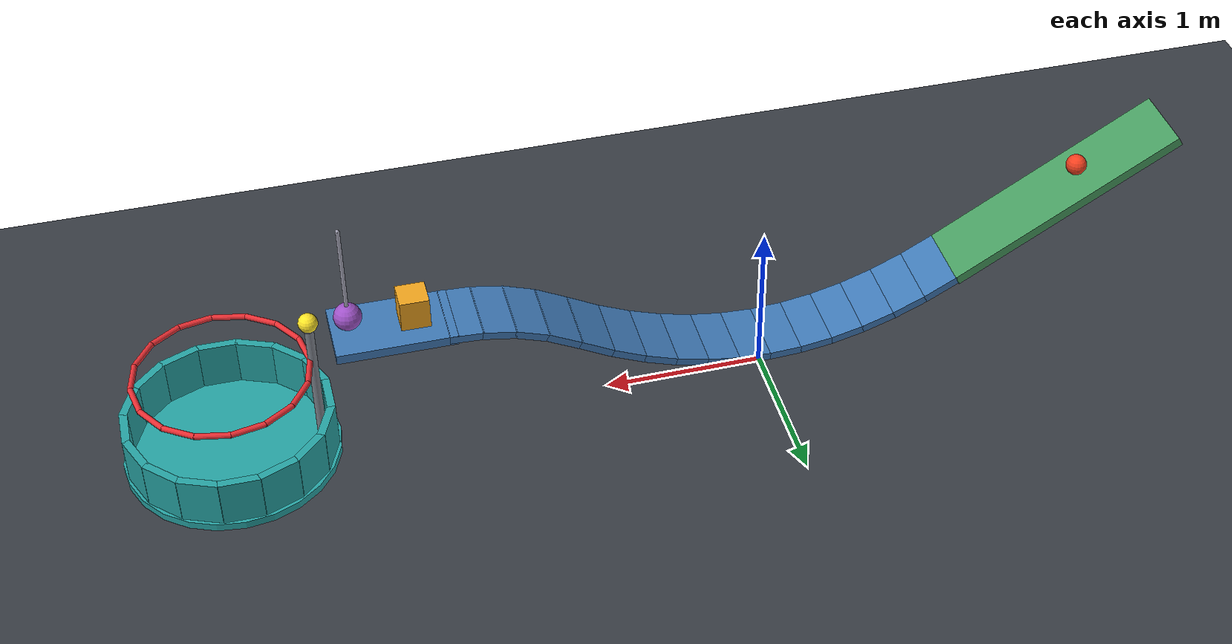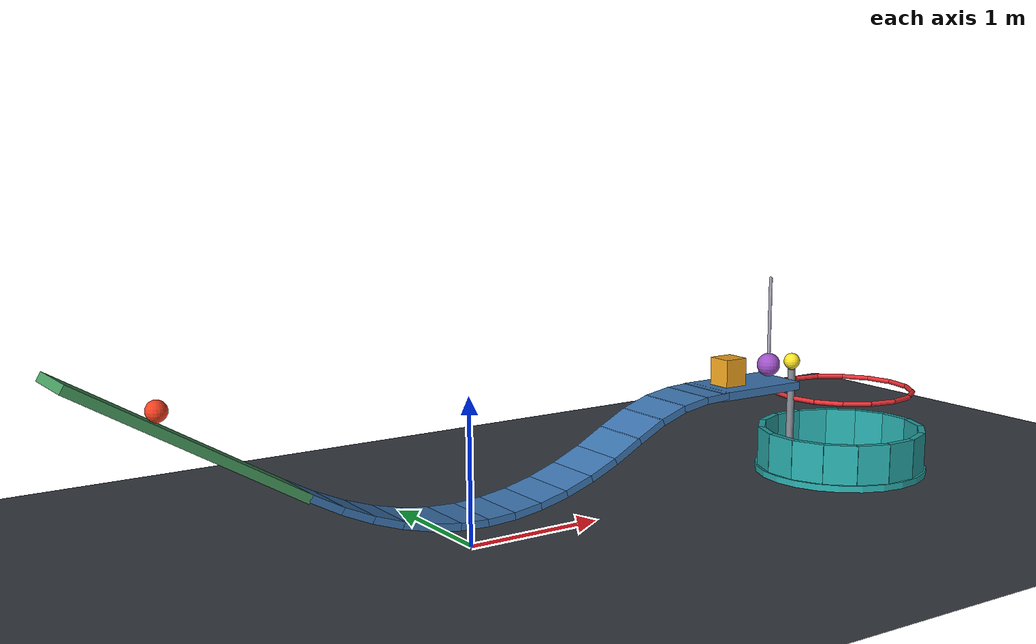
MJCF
<mujoco model="gravity_halfpipe_chain">
  <compiler angle="radian" autolimits="true"/>
  <option timestep="0.002" gravity="0 0 -9.81" integrator="implicitfast" solver="Newton" iterations="100" cone="elliptic"/>
  <size njmax="2000" nconmax="400"/>
  <visual>
    <global azimuth="135" elevation="-20"/>
    <headlight ambient="0.35 0.35 0.35" diffuse="0.7 0.7 0.7" specular="0.2 0.2 0.2"/>
  </visual>

  <worldbody>
    <light name="overhead" pos="0 0 6" dir="0 0 -1" directional="true"/>
    <camera name="overview" pos="0.7 -8 4.3" xyaxes="1 0 0 0 0.36 0.933"/>
    <geom name="floor" type="plane" pos="0 0 0" size="10 5 0.1" friction="0.8 0.02 0.002" rgba="0.22 0.24 0.27 1"/>

    <body name="ball1" pos="-2.024051 0 1.170233">
      <freejoint name="ball1_free"/>
      <geom name="ball1_sphere" type="sphere" size="0.065" mass="0.15" friction="0.5 0.003 0.00002" solref="0.008 1" rgba="0.95 0.25 0.12 1"/>
    </body>

    <!-- The ball's initial contact point is one metre along the ramp from its lower end. -->
    <body name="ramp">
      <geom name="ramp_surface" type="box" pos="-1.901421 0 0.985872" euler="0 0.540420 0" size="0.803 0.22 0.03" friction="0.5 0.003 0.00002" solref="0.008 1" rgba="0.28 0.62 0.38 1"/>
    </body>

    <!-- Closely joined primitive segments form the bowl and its gently flattened far lip. -->
    <body name="halfpipe">
      <geom name="halfpipe_01" type="box" pos="-1.112048 0 0.523095" euler="0 0.502843 0" size="0.117127 0.22 0.025" friction="0.5 0.003 0.00002" solref="0.008 1" rgba="0.25 0.48 0.72 1"/>
      <geom name="halfpipe_02" type="box" pos="-0.910259 0 0.422202" euler="0 0.422854 0" size="0.112659 0.22 0.025" friction="0.5 0.003 0.00002" solref="0.008 1" rgba="0.25 0.48 0.72 1"/>
      <geom name="halfpipe_03" type="box" pos="-0.708259 0 0.341404" euler="0 0.336675 0" size="0.108948 0.22 0.025" friction="0.5 0.003 0.00002" solref="0.008 1" rgba="0.25 0.48 0.72 1"/>
      <geom name="halfpipe_04" type="box" pos="-0.506063 0 0.280746" euler="0 0.244979 0" size="0.106078 0.22 0.025" friction="0.5 0.003 0.00002" solref="0.008 1" rgba="0.25 0.48 0.72 1"/>
      <geom name="halfpipe_05" type="box" pos="-0.303709 0 0.240277" euler="0 0.148890 0" size="0.104119 0.22 0.025" friction="0.5 0.003 0.00002" solref="0.008 1" rgba="0.25 0.48 0.72 1"/>
      <geom name="halfpipe_06" type="box" pos="-0.101248 0 0.220031" euler="0 0.049958 0" size="0.103125 0.22 0.025" friction="0.5 0.003 0.00002" solref="0.008 1" rgba="0.25 0.48 0.72 1"/>
      <geom name="halfpipe_07" type="box" pos="0.101248 0 0.220031" euler="0 -0.049958 0" size="0.103125 0.22 0.025" friction="0.5 0.003 0.00002" solref="0.008 1" rgba="0.25 0.48 0.72 1"/>
      <geom name="halfpipe_08" type="box" pos="0.303709 0 0.240277" euler="0 -0.148890 0" size="0.104119 0.22 0.025" friction="0.5 0.003 0.00002" solref="0.008 1" rgba="0.25 0.48 0.72 1"/>
      <geom name="halfpipe_09" type="box" pos="0.506063 0 0.280746" euler="0 -0.244979 0" size="0.106078 0.22 0.025" friction="0.5 0.003 0.00002" solref="0.008 1" rgba="0.25 0.48 0.72 1"/>
      <geom name="halfpipe_10" type="box" pos="0.708259 0 0.341404" euler="0 -0.336675 0" size="0.108948 0.22 0.025" friction="0.5 0.003 0.00002" solref="0.008 1" rgba="0.25 0.48 0.72 1"/>
      <geom name="halfpipe_11" type="box" pos="0.910259 0 0.422202" euler="0 -0.422854 0" size="0.112659 0.22 0.025" friction="0.5 0.003 0.00002" solref="0.008 1" rgba="0.25 0.48 0.72 1"/>
      <geom name="halfpipe_12" type="box" pos="1.112048 0 0.523095" euler="0 -0.502843 0" size="0.117127 0.22 0.025" friction="0.5 0.003 0.00002" solref="0.008 1" rgba="0.25 0.48 0.72 1"/>
      <geom name="halfpipe_13" type="box" pos="1.311621 0 0.630365" euler="0 -0.483447 0" size="0.115944 0.22 0.025" friction="0.5 0.003 0.00002" solref="0.008 1" rgba="0.25 0.48 0.72 1"/>
      <geom name="halfpipe_14" type="box" pos="1.508259 0 0.716404" euler="0 -0.336675 0" size="0.108948 0.22 0.025" friction="0.5 0.003 0.00002" solref="0.008 1" rgba="0.25 0.48 0.72 1"/>
      <geom name="halfpipe_15" type="box" pos="1.704310 0 0.767874" euler="0 -0.173246 0" size="0.104520 0.22 0.025" friction="0.5 0.003 0.00002" solref="0.008 1" rgba="0.25 0.48 0.72 1"/>
      <geom name="halfpipe_16" type="box" pos="1.901248 0 0.790031" euler="0 -0.049958 0" size="0.103125 0.22 0.025" friction="0.5 0.003 0.00002" solref="0.008 1" rgba="0.25 0.48 0.72 1"/>
      <geom name="halfpipe_exit" type="box" pos="2.315 0 0.79" size="0.365 0.22 0.03" friction="0.08 0.002 0.00002" solref="0.008 1" rgba="0.25 0.48 0.72 1"/>
    </body>

    <body name="block" pos="2.18 0 0.92">
      <freejoint name="block_free"/>
      <inertial pos="0 0 -0.035" mass="0.07" diaginertia="0.0004 0.0004 0.00038"/>
      <geom name="block_box" type="box" size="0.09 0.09 0.10" friction="0.10 0.002 0.00002" solref="0.008 1" rgba="0.95 0.65 0.12 1"/>
    </body>

    <body name="pendulum" pos="2.57 0 1.565">
      <joint name="pendulum_hinge" type="hinge" axis="0 1 0" range="-1.3 0.5" damping="0.001"/>
      <geom name="pendulum_rod" type="capsule" fromto="0 0 0 0 0 -0.64" size="0.012" mass="0.004" friction="0.2 0.002 0.00002" rgba="0.65 0.65 0.72 1"/>
      <geom name="pendulum_head" type="sphere" pos="0 0 -0.64" size="0.085" mass="0.035" friction="0.2 0.002 0.00002" solref="0.008 1" rgba="0.62 0.32 0.78 1"/>
    </body>

    <body name="ball2" pos="2.805 0 0.925">
      <freejoint name="ball2_free"/>
      <geom name="ball2_sphere" type="sphere" size="0.06" mass="0.015" friction="0.8 0.03 0.008" solref="0.008 1" rgba="1 0.9 0.15 1"/>
    </body>

    <body name="ball2_support">
      <geom name="ball2_support_post" type="cylinder" pos="2.805 0 0.4325" size="0.028 0.4325" friction="0.15 0.002 0.00002" solref="0.008 1" rgba="0.5 0.52 0.56 1"/>
    </body>

    <body name="hoop" pos="3.35 0 0.64">
      <geom name="hoop_01" type="capsule" fromto="0.53 0 0 0.489657 0.202819 0" size="0.018" rgba="0.9 0.18 0.2 1"/>
      <geom name="hoop_02" type="capsule" fromto="0.489657 0.202819 0 0.374767 0.374767 0" size="0.018" rgba="0.9 0.18 0.2 1"/>
      <geom name="hoop_03" type="capsule" fromto="0.374767 0.374767 0 0.202819 0.489657 0" size="0.018" rgba="0.9 0.18 0.2 1"/>
      <geom name="hoop_04" type="capsule" fromto="0.202819 0.489657 0 0 0.53 0" size="0.018" rgba="0.9 0.18 0.2 1"/>
      <geom name="hoop_05" type="capsule" fromto="0 0.53 0 -0.202819 0.489657 0" size="0.018" rgba="0.9 0.18 0.2 1"/>
      <geom name="hoop_06" type="capsule" fromto="-0.202819 0.489657 0 -0.374767 0.374767 0" size="0.018" rgba="0.9 0.18 0.2 1"/>
      <geom name="hoop_07" type="capsule" fromto="-0.374767 0.374767 0 -0.489657 0.202819 0" size="0.018" rgba="0.9 0.18 0.2 1"/>
      <geom name="hoop_08" type="capsule" fromto="-0.489657 0.202819 0 -0.53 0 0" size="0.018" rgba="0.9 0.18 0.2 1"/>
      <geom name="hoop_09" type="capsule" fromto="-0.53 0 0 -0.489657 -0.202819 0" size="0.018" rgba="0.9 0.18 0.2 1"/>
      <geom name="hoop_10" type="capsule" fromto="-0.489657 -0.202819 0 -0.374767 -0.374767 0" size="0.018" rgba="0.9 0.18 0.2 1"/>
      <geom name="hoop_11" type="capsule" fromto="-0.374767 -0.374767 0 -0.202819 -0.489657 0" size="0.018" rgba="0.9 0.18 0.2 1"/>
      <geom name="hoop_12" type="capsule" fromto="-0.202819 -0.489657 0 0 -0.53 0" size="0.018" rgba="0.9 0.18 0.2 1"/>
      <geom name="hoop_13" type="capsule" fromto="0 -0.53 0 0.202819 -0.489657 0" size="0.018" rgba="0.9 0.18 0.2 1"/>
      <geom name="hoop_14" type="capsule" fromto="0.202819 -0.489657 0 0.374767 -0.374767 0" size="0.018" rgba="0.9 0.18 0.2 1"/>
      <geom name="hoop_15" type="capsule" fromto="0.374767 -0.374767 0 0.489657 -0.202819 0" size="0.018" rgba="0.9 0.18 0.2 1"/>
      <geom name="hoop_16" type="capsule" fromto="0.489657 -0.202819 0 0.53 0 0" size="0.018" rgba="0.9 0.18 0.2 1"/>
    </body>

    <body name="cup" pos="3.35 0 0">
      <geom name="cup_bottom" type="cylinder" pos="0 0 0.025" size="0.66 0.025" friction="1.2 0.06 0.01" solref="0.012 1" rgba="0.15 0.65 0.65 1"/>
      <geom name="cup_wall_01" type="box" pos="0.61 0 0.20" euler="0 0 0" size="0.025 0.125 0.15" friction="1.2 0.06 0.01" solref="0.012 1" rgba="0.15 0.65 0.65 1"/>
      <geom name="cup_wall_02" type="box" pos="0.563567 0.233437 0.20" euler="0 0 0.392699" size="0.025 0.125 0.15" friction="1.2 0.06 0.01" solref="0.012 1" rgba="0.15 0.65 0.65 1"/>
      <geom name="cup_wall_03" type="box" pos="0.431335 0.431335 0.20" euler="0 0 0.785398" size="0.025 0.125 0.15" friction="1.2 0.06 0.01" solref="0.012 1" rgba="0.15 0.65 0.65 1"/>
      <geom name="cup_wall_04" type="box" pos="0.233437 0.563567 0.20" euler="0 0 1.178097" size="0.025 0.125 0.15" friction="1.2 0.06 0.01" solref="0.012 1" rgba="0.15 0.65 0.65 1"/>
      <geom name="cup_wall_05" type="box" pos="0 0.61 0.20" euler="0 0 1.570796" size="0.025 0.125 0.15" friction="1.2 0.06 0.01" solref="0.012 1" rgba="0.15 0.65 0.65 1"/>
      <geom name="cup_wall_06" type="box" pos="-0.233437 0.563567 0.20" euler="0 0 1.963495" size="0.025 0.125 0.15" friction="1.2 0.06 0.01" solref="0.012 1" rgba="0.15 0.65 0.65 1"/>
      <geom name="cup_wall_07" type="box" pos="-0.431335 0.431335 0.20" euler="0 0 2.356194" size="0.025 0.125 0.15" friction="1.2 0.06 0.01" solref="0.012 1" rgba="0.15 0.65 0.65 1"/>
      <geom name="cup_wall_08" type="box" pos="-0.563567 0.233437 0.20" euler="0 0 2.748894" size="0.025 0.125 0.15" friction="1.2 0.06 0.01" solref="0.012 1" rgba="0.15 0.65 0.65 1"/>
      <geom name="cup_wall_09" type="box" pos="-0.61 0 0.20" euler="0 0 3.141593" size="0.025 0.125 0.15" friction="1.2 0.06 0.01" solref="0.012 1" rgba="0.15 0.65 0.65 1"/>
      <geom name="cup_wall_10" type="box" pos="-0.563567 -0.233437 0.20" euler="0 0 3.534292" size="0.025 0.125 0.15" friction="1.2 0.06 0.01" solref="0.012 1" rgba="0.15 0.65 0.65 1"/>
      <geom name="cup_wall_11" type="box" pos="-0.431335 -0.431335 0.20" euler="0 0 3.926991" size="0.025 0.125 0.15" friction="1.2 0.06 0.01" solref="0.012 1" rgba="0.15 0.65 0.65 1"/>
      <geom name="cup_wall_12" type="box" pos="-0.233437 -0.563567 0.20" euler="0 0 4.319690" size="0.025 0.125 0.15" friction="1.2 0.06 0.01" solref="0.012 1" rgba="0.15 0.65 0.65 1"/>
      <geom name="cup_wall_13" type="box" pos="0 -0.61 0.20" euler="0 0 4.712389" size="0.025 0.125 0.15" friction="1.2 0.06 0.01" solref="0.012 1" rgba="0.15 0.65 0.65 1"/>
      <geom name="cup_wall_14" type="box" pos="0.233437 -0.563567 0.20" euler="0 0 5.105088" size="0.025 0.125 0.15" friction="1.2 0.06 0.01" solref="0.012 1" rgba="0.15 0.65 0.65 1"/>
      <geom name="cup_wall_15" type="box" pos="0.431335 -0.431335 0.20" euler="0 0 5.497787" size="0.025 0.125 0.15" friction="1.2 0.06 0.01" solref="0.012 1" rgba="0.15 0.65 0.65 1"/>
      <geom name="cup_wall_16" type="box" pos="0.563567 -0.233437 0.20" euler="0 0 5.890486" size="0.025 0.125 0.15" friction="1.2 0.06 0.01" solref="0.012 1" rgba="0.15 0.65 0.65 1"/>
    </body>
  </worldbody>

  <keyframe>
    <key name="start" qpos="-2.024051 0 1.170233 1 0 0 0 2.18 0 0.92 1 0 0 0 0 2.805 0 0.925 1 0 0 0" qvel="0 0 0 0 0 0 0 0 0 0 0 0 0 0 0 0 0 0 0"/>
  </keyframe>
</mujoco>
